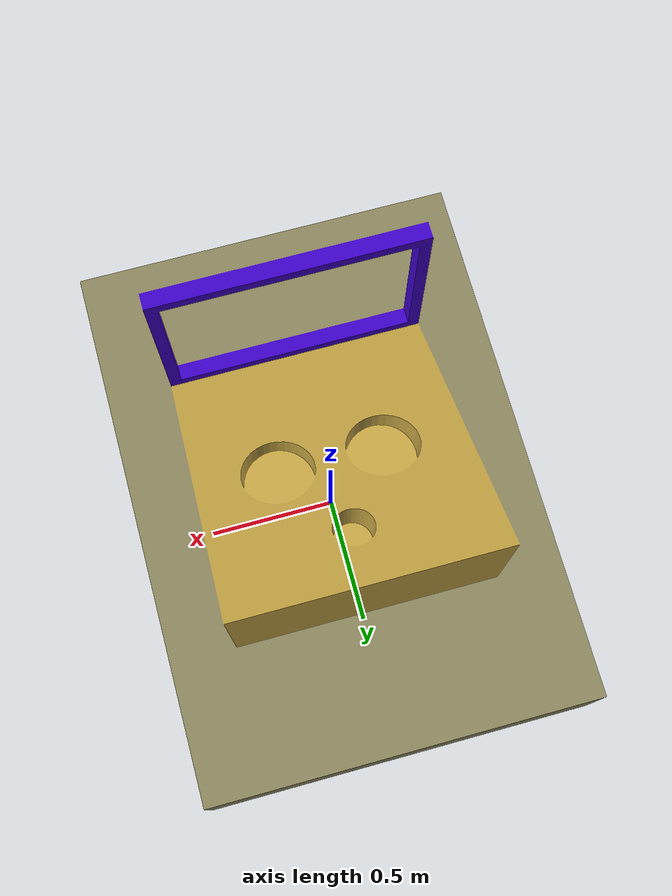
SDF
<?xml version="1.0" ?>
<sdf version="1.6">
  <model name="Skeeball">
  <static>true </static>
    <link name="Skeeballl">
      <pose>0 0 0 0 0 0</pose>
      <velocity_decay>
        <linear>0.001</linear>
        <angular>0.001</angular>
      </velocity_decay>
      <inertial>
        <pose>0 0 -10 0 0 0</pose>
        <mass>10</mass>
        <inertia>
          <ixx>10</ixx>
          <ixy>0</ixy>
          <ixz>0</ixz>
          <iyy>10</iyy>
          <iyz>0</iyz>
          <izz>10</izz>
        </inertia>
      </inertial>
      <collision name="Skeeballc">
        <geometry>
	  <mesh><uri>model://Skeeball/mesh/Skeeball.dae</uri></mesh>
          <cylinder>
            <radius>0.25</radius>
            <length>1.0</length>
          </cylinder>
        </geometry>
      </collision>
      <visual name="Skeeballv">
        <geometry>
	<mesh><uri>model://Skeeball/mesh/Skeeball.dae</uri></mesh>
        </geometry>
      </visual>
    </link>

    <plugin name="BuoyancyPlugin" filename="libbuoyancy_gazebo_plugin.so">
      <fluid_density>1000</fluid_density>
      <fluid_level>0.0</fluid_level>
      <fluid_drag>5.0</fluid_drag>
      <link>
        <name>Skeeballl</name>
      </link>
    </plugin>
  </model>
</sdf>
